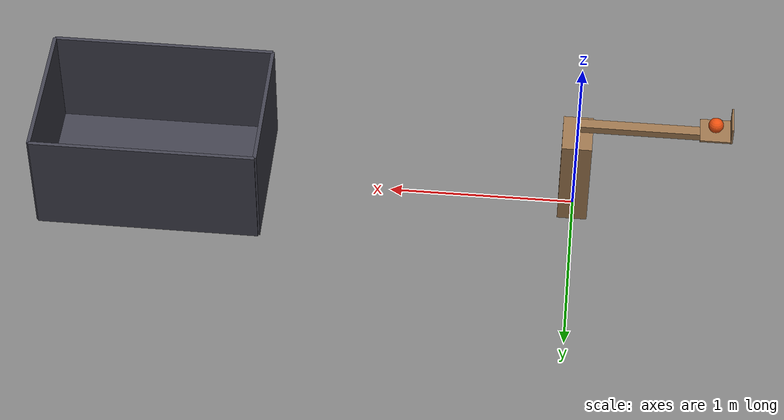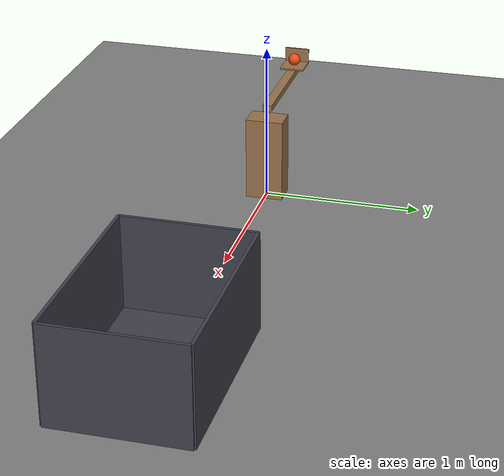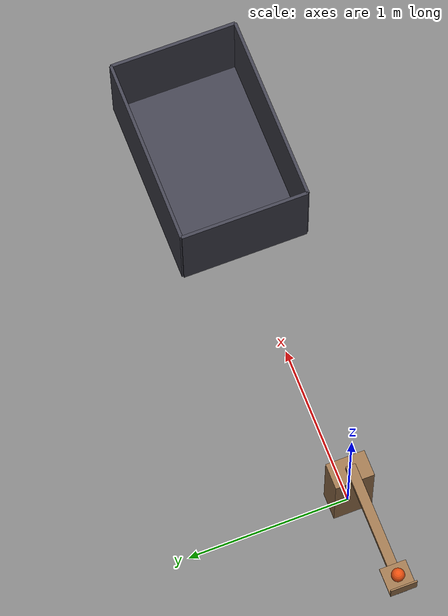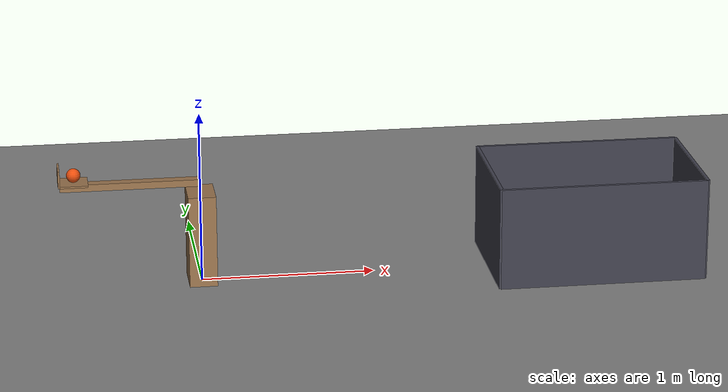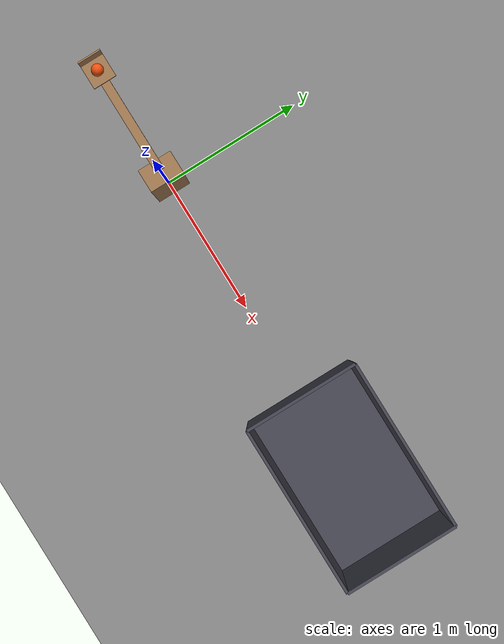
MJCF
<mujoco model="spring_catapult_into_bucket">
  <compiler angle="radian"/>
  <option timestep="0.002"/>
  <worldbody>
    <geom name="floor" type="plane" size="8 8 0.1" friction="0.8 0.01 0.005"/>
    <geom name="catapult_stand" type="box" pos="0 0 0.27" size="0.08 0.12 0.27" friction="0.8 0.01 0.004" solref="0.01 1" rgba="0.6 0.45 0.3 1"/>
    <body name="catapult" pos="0 0 0.6">
      <joint name="catapult_hinge" type="hinge" pos="0 0 0" axis="0 1 0" limited="true" range="0 0.785398" stiffness="10" springref="1.22173" damping="0.05" armature="0.01"/>
      <geom name="catapult_arm" type="box" pos="-0.4 0 0" size="0.4 0.03 0.02" mass="0.6" friction="0.8 0.01 0.004" solref="0.01 1" rgba="0.6 0.45 0.3 1"/>
      <geom name="catapult_scoop_base" type="box" pos="-0.72 0 0.025" size="0.08 0.08 0.005" mass="0.02" friction="0.8 0.01 0.004" solref="0.01 1" rgba="0.6 0.45 0.3 1"/>
      <geom name="catapult_scoop_back" type="box" pos="-0.805 0 0.07" size="0.005 0.08 0.05" mass="0.01" friction="0.8 0.01 0.004" solref="0.01 1" rgba="0.6 0.45 0.3 1"/>
    </body>
    <body name="ball" pos="-0.72 0 0.67">
      <freejoint/>
      <geom name="ball" type="sphere" pos="0 0 0" size="0.04" mass="0.1" condim="6" friction="0.8 0.02 0.01" solref="0.01 1" rgba="0.9 0.3 0.05 1"/>
    </body>
    <body name="bucket">
      <geom name="bucket_base" type="box" pos="2.28 0 0.01" size="0.6 0.4 0.01" friction="1 0.02 0.01" solref="0.01 1" rgba="0.25 0.25 0.3 1"/>
      <geom name="bucket_near_wall" type="box" pos="1.68 0 0.3" size="0.01 0.4 0.3" friction="1 0.02 0.01" solref="0.01 1" rgba="0.25 0.25 0.3 1"/>
      <geom name="bucket_far_wall" type="box" pos="2.88 0 0.3" size="0.01 0.4 0.3" friction="1 0.02 0.01" solref="0.01 1" rgba="0.25 0.25 0.3 1"/>
      <geom name="bucket_left_wall" type="box" pos="2.28 0.4 0.3" size="0.6 0.01 0.3" friction="1 0.02 0.01" solref="0.01 1" rgba="0.25 0.25 0.3 1"/>
      <geom name="bucket_right_wall" type="box" pos="2.28 -0.4 0.3" size="0.6 0.01 0.3" friction="1 0.02 0.01" solref="0.01 1" rgba="0.25 0.25 0.3 1"/>
    </body>
  </worldbody>
  <keyframe>
    <key name="start" qpos="0 -0.72 0 0.67 1 0 0 0" qvel="0 0 0 0 0 0 0"/>
  </keyframe>
</mujoco>
